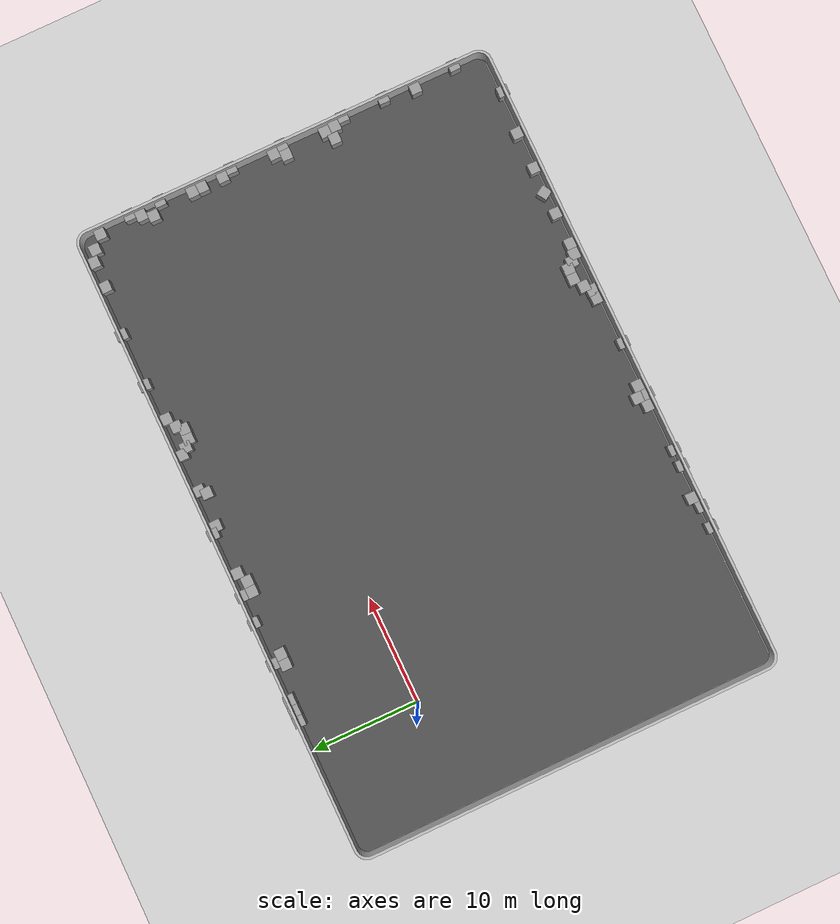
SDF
<sdf version="1.4">
 <world name="default">
  <light name="sun" type="directional">
   <pose>0 0 10 0 -0 0</pose>
   <diffuse>0.8 0.8 0.8 1</diffuse>
   <specular>0.2 0.2 0.2 1</specular>
   <attenuation>
    <range>1000</range>
    <constant>0.9</constant>
    <linear>0.01</linear>
    <quadratic>0.001</quadratic>
   </attenuation>
   <direction>-0.5 0.1 -0.9</direction>
  </light>
  <model name="border">
   <static>1</static>
   <link name="link">
    <collision name="collision">
     <geometry><mesh><uri>model://border/meshes/border.DAE</uri></mesh></geometry>
    </collision>
    <visual name="visual">
     <geometry><mesh><uri>model://border/meshes/border.DAE</uri></mesh></geometry>
     <material>
      <script>
       <uri>model://border/materials/scripts</uri>
       <uri>model://border/materials/textures</uri>
       <name>vrc/border</name>
      </script>
     </material>
    </visual>
    <velocity_decay><linear>0</linear><angular>0</angular></velocity_decay>
   </link>
   <pose>20 -10 0 0 -0 1.57079</pose>
  </model>
  <model name="ground_plane">
   <static>1</static>
   <link name="link">
    <collision name="collision">
     <geometry><plane><normal>0 0 1</normal><size>100 100</size></plane></geometry>
     <surface><friction><ode><mu>100</mu><mu2>50</mu2></ode></friction></surface>
    </collision>
    <visual name="visual">
     <cast_shadows>0</cast_shadows>
     <geometry><plane><normal>0 0 1</normal><size>1000 1000</size></plane></geometry>
     <material>
      <script><uri>file://media/materials/scripts/gazebo.material</uri><name>Gazebo/Grey</name></script>
     </material>
    </visual>
    <velocity_decay><linear>0</linear><angular>0</angular></velocity_decay>
   </link>
  </model>
  <physics type="ode">
   <max_step_size>0.002</max_step_size>
   <real_time_factor>1</real_time_factor>
   <real_time_update_rate>100</real_time_update_rate>
   <gravity>0 0 -9.8</gravity>
  </physics>
  <scene><ambient>0.4 0.4 0.4 1</ambient><background>0.7 0.7 0.7 1</background><shadows>1</shadows></scene>
  <model name="asphalt_plane">
   <static>1</static>
   <link name="link">
    <collision name="collision"><geometry><box><size>60 40 0.1</size></box></geometry></collision>
    <visual name="visual">
     <cast_shadows>0</cast_shadows>
     <geometry><box><size>60 40 0.1</size></box></geometry>
     <material>
      <script>
       <uri>model://asphalt_plane/materials/scripts</uri>
       <uri>model://asphalt_plane/materials/textures</uri>
       <name>vrc/asphalt</name>
      </script>
     </material>
    </visual>
    <velocity_decay><linear>0</linear><angular>0</angular></velocity_decay>
   </link>
   <pose>20.0271 -9.90036 0 0 -0 0</pose>
  </model>
  <spherical_coordinates>
   <surface_model>EARTH_WGS84</surface_model>
   <latitude_deg>0</latitude_deg>
   <longitude_deg>0</longitude_deg>
   <elevation>0</elevation>
   <heading_deg>0</heading_deg>
  </spherical_coordinates>
  <model name="unit_box_1">
   <pose>5 10 0.5 0 -0 0</pose>
   <link name="link">
    <inertial>
     <mass>1</mass>
     <inertia><ixx>1</ixx><ixy>0</ixy><ixz>0</ixz><iyy>1</iyy><iyz>0</iyz><izz>1</izz></inertia>
    </inertial>
    <collision name="collision"><geometry><box><size>1 1 1</size></box></geometry></collision>
    <visual name="visual">
     <geometry><box><size>1 1 1</size></box></geometry>
     <material>
      <script><uri>file://media/materials/scripts/gazebo.material</uri><name>Gazebo/Grey</name></script>
     </material>
    </visual>
    <velocity_decay><linear>0</linear><angular>0</angular></velocity_decay>
   </link>
   <static>0</static>
  </model>
  <model name="unit_box_2">
   <pose>8.44714 10 0.5 0 -0 0</pose>
   <link name="link">
    <inertial>
     <mass>1</mass>
     <inertia><ixx>1</ixx><ixy>0</ixy><ixz>0</ixz><iyy>1</iyy><iyz>0</iyz><izz>1</izz></inertia>
    </inertial>
    <collision name="collision"><geometry><box><size>1 1 1</size></box></geometry></collision>
    <visual name="visual">
     <geometry><box><size>1 1 1</size></box></geometry>
     <material>
      <script><uri>file://media/materials/scripts/gazebo.material</uri><name>Gazebo/Grey</name></script>
     </material>
    </visual>
    <velocity_decay><linear>0</linear><angular>0</angular></velocity_decay>
   </link>
   <static>0</static>
  </model>
  <model name="unit_box_3">
   <pose>15 10 0.5 0 -0 0</pose>
   <link name="link">
    <inertial>
     <mass>1</mass>
     <inertia><ixx>1</ixx><ixy>0</ixy><ixz>0</ixz><iyy>1</iyy><iyz>0</iyz><izz>1</izz></inertia>
    </inertial>
    <collision name="collision"><geometry><box><size>1 1 1</size></box></geometry></collision>
    <visual name="visual">
     <geometry><box><size>1 1 1</size></box></geometry>
     <material>
      <script><uri>file://media/materials/scripts/gazebo.material</uri><name>Gazebo/Grey</name></script>
     </material>
    </visual>
    <velocity_decay><linear>0</linear><angular>0</angular></velocity_decay>
   </link>
   <static>0</static>
  </model>
  <model name="unit_box_4">
   <pose>12.4145 10 0.5 0 -0 0</pose>
   <link name="link">
    <inertial>
     <mass>1</mass>
     <inertia><ixx>1</ixx><ixy>0</ixy><ixz>0</ixz><iyy>1</iyy><iyz>0</iyz><izz>1</izz></inertia>
    </inertial>
    <collision name="collision"><geometry><box><size>1 1 1</size></box></geometry></collision>
    <visual name="visual">
     <geometry><box><size>1 1 1</size></box></geometry>
     <material>
      <script><uri>file://media/materials/scripts/gazebo.material</uri><name>Gazebo/Grey</name></script>
     </material>
    </visual>
    <velocity_decay><linear>0</linear><angular>0</angular></velocity_decay>
   </link>
   <static>0</static>
  </model>
  <model name="unit_box_5">
   <pose>15 9 0.5 0 -0 0</pose>
   <link name="link">
    <inertial>
     <mass>1</mass>
     <inertia><ixx>1</ixx><ixy>0</ixy><ixz>0</ixz><iyy>1</iyy><iyz>0</iyz><izz>1</izz></inertia>
    </inertial>
    <collision name="collision"><geometry><box><size>1 1 1</size></box></geometry></collision>
    <visual name="visual">
     <geometry><box><size>1 1 1</size></box></geometry>
     <material>
      <script><uri>file://media/materials/scripts/gazebo.material</uri><name>Gazebo/Grey</name></script>
     </material>
    </visual>
    <velocity_decay><linear>0</linear><angular>0</angular></velocity_decay>
   </link>
   <static>0</static>
  </model>
  <model name="unit_box_6">
   <pose>21 10 0.5 0 -0 0</pose>
   <link name="link">
    <inertial>
     <mass>1</mass>
     <inertia><ixx>1</ixx><ixy>0</ixy><ixz>0</ixz><iyy>1</iyy><iyz>0</iyz><izz>1</izz></inertia>
    </inertial>
    <collision name="collision"><geometry><box><size>1 1 1</size></box></geometry></collision>
    <visual name="visual">
     <geometry><box><size>1 1 1</size></box></geometry>
     <material>
      <script><uri>file://media/materials/scripts/gazebo.material</uri><name>Gazebo/Grey</name></script>
     </material>
    </visual>
    <velocity_decay><linear>0</linear><angular>0</angular></velocity_decay>
   </link>
   <static>0</static>
  </model>
  <model name="unit_box_7">
   <pose>21.5704 9.47878 0.5 0 -0 0</pose>
   <link name="link">
    <inertial>
     <mass>1</mass>
     <inertia><ixx>1</ixx><ixy>0</ixy><ixz>0</ixz><iyy>1</iyy><iyz>0</iyz><izz>1</izz></inertia>
    </inertial>
    <collision name="collision"><geometry><box><size>1 1 1</size></box></geometry></collision>
    <visual name="visual">
     <geometry><box><size>1 1 1</size></box></geometry>
     <material>
      <script><uri>file://media/materials/scripts/gazebo.material</uri><name>Gazebo/Grey</name></script>
     </material>
    </visual>
    <velocity_decay><linear>0</linear><angular>0</angular></velocity_decay>
   </link>
   <static>0</static>
  </model>
  <model name="unit_box_8">
   <pose>16 9 0.5 0 -0 0</pose>
   <link name="link">
    <inertial>
     <mass>1</mass>
     <inertia><ixx>1</ixx><ixy>0</ixy><ixz>0</ixz><iyy>1</iyy><iyz>0</iyz><izz>1</izz></inertia>
    </inertial>
    <collision name="collision"><geometry><box><size>1 1 1</size></box></geometry></collision>
    <visual name="visual">
     <geometry><box><size>1 1 1</size></box></geometry>
     <material>
      <script><uri>file://media/materials/scripts/gazebo.material</uri><name>Gazebo/Grey</name></script>
     </material>
    </visual>
    <velocity_decay><linear>0</linear><angular>0</angular></velocity_decay>
   </link>
   <static>0</static>
  </model>
  <model name="unit_box_9">
   <pose>17 9.50852 0.5 0 -0 0</pose>
   <link name="link">
    <inertial>
     <mass>1</mass>
     <inertia><ixx>1</ixx><ixy>0</ixy><ixz>0</ixz><iyy>1</iyy><iyz>0</iyz><izz>1</izz></inertia>
    </inertial>
    <collision name="collision"><geometry><box><size>1 1 1</size></box></geometry></collision>
    <visual name="visual">
     <geometry><box><size>1 1 1</size></box></geometry>
     <material>
      <script><uri>file://media/materials/scripts/gazebo.material</uri><name>Gazebo/Grey</name></script>
     </material>
    </visual>
    <velocity_decay><linear>0</linear><angular>0</angular></velocity_decay>
   </link>
   <static>0</static>
  </model>
  <model name="unit_box_10">
   <pose>25 9.5316 0.5 0 -0 0</pose>
   <link name="link">
    <inertial>
     <mass>1</mass>
     <inertia><ixx>1</ixx><ixy>0</ixy><ixz>0</ixz><iyy>1</iyy><iyz>0</iyz><izz>1</izz></inertia>
    </inertial>
    <collision name="collision"><geometry><box><size>1 1 1</size></box></geometry></collision>
    <visual name="visual">
     <geometry><box><size>1 1 1</size></box></geometry>
     <material>
      <script><uri>file://media/materials/scripts/gazebo.material</uri><name>Gazebo/Grey</name></script>
     </material>
    </visual>
    <velocity_decay><linear>0</linear><angular>0</angular></velocity_decay>
   </link>
   <static>0</static>
  </model>
  <model name="unit_box_11">
   <pose>24.5468 9 0.5 0 -0 0</pose>
   <link name="link">
    <inertial>
     <mass>1</mass>
     <inertia><ixx>1</ixx><ixy>0</ixy><ixz>0</ixz><iyy>1</iyy><iyz>0</iyz><izz>1</izz></inertia>
    </inertial>
    <collision name="collision"><geometry><box><size>1 1 1</size></box></geometry></collision>
    <visual name="visual">
     <geometry><box><size>1 1 1</size></box></geometry>
     <material>
      <script><uri>file://media/materials/scripts/gazebo.material</uri><name>Gazebo/Grey</name></script>
     </material>
    </visual>
    <velocity_decay><linear>0</linear><angular>0</angular></velocity_decay>
   </link>
   <static>0</static>
  </model>
  <model name="unit_box_12">
   <pose>28.5155 9.57639 0.5 0 -0 0</pose>
   <link name="link">
    <inertial>
     <mass>1</mass>
     <inertia><ixx>1</ixx><ixy>0</ixy><ixz>0</ixz><iyy>1</iyy><iyz>0</iyz><izz>1</izz></inertia>
    </inertial>
    <collision name="collision"><geometry><box><size>1 1 1</size></box></geometry></collision>
    <visual name="visual">
     <geometry><box><size>1 1 1</size></box></geometry>
     <material>
      <script><uri>file://media/materials/scripts/gazebo.material</uri><name>Gazebo/Grey</name></script>
     </material>
    </visual>
    <velocity_decay><linear>0</linear><angular>0</angular></velocity_decay>
   </link>
   <static>0</static>
  </model>
  <model name="unit_box_13">
   <pose>29 9 0.5 0 -0 0</pose>
   <link name="link">
    <inertial>
     <mass>1</mass>
     <inertia><ixx>1</ixx><ixy>0</ixy><ixz>0</ixz><iyy>1</iyy><iyz>0</iyz><izz>1</izz></inertia>
    </inertial>
    <collision name="collision"><geometry><box><size>1 1 1</size></box></geometry></collision>
    <visual name="visual">
     <geometry><box><size>1 1 1</size></box></geometry>
     <material>
      <script><uri>file://media/materials/scripts/gazebo.material</uri><name>Gazebo/Grey</name></script>
     </material>
    </visual>
    <velocity_decay><linear>0</linear><angular>0</angular></velocity_decay>
   </link>
   <static>0</static>
  </model>
  <model name="unit_box_14">
   <pose>29.591 8.48161 0.5 0 -0 0</pose>
   <link name="link">
    <inertial>
     <mass>1</mass>
     <inertia><ixx>1</ixx><ixy>0</ixy><ixz>0</ixz><iyy>1</iyy><iyz>0</iyz><izz>1</izz></inertia>
    </inertial>
    <collision name="collision"><geometry><box><size>1 1 1</size></box></geometry></collision>
    <visual name="visual">
     <geometry><box><size>1 1 1</size></box></geometry>
     <material>
      <script><uri>file://media/materials/scripts/gazebo.material</uri><name>Gazebo/Grey</name></script>
     </material>
    </visual>
    <velocity_decay><linear>0</linear><angular>0</angular></velocity_decay>
   </link>
   <static>0</static>
  </model>
  <model name="unit_box_15">
   <pose>30.5347 8.46531 0.5 0 -0 0</pose>
   <link name="link">
    <inertial>
     <mass>1</mass>
     <inertia><ixx>1</ixx><ixy>0</ixy><ixz>0</ixz><iyy>1</iyy><iyz>0</iyz><izz>1</izz></inertia>
    </inertial>
    <collision name="collision"><geometry><box><size>1 1 1</size></box></geometry></collision>
    <visual name="visual">
     <geometry><box><size>1 1 1</size></box></geometry>
     <material>
      <script><uri>file://media/materials/scripts/gazebo.material</uri><name>Gazebo/Grey</name></script>
     </material>
    </visual>
    <velocity_decay><linear>0</linear><angular>0</angular></velocity_decay>
   </link>
   <static>0</static>
  </model>
  <model name="unit_box_16">
   <pose>31 9 0.5 0 -0 0</pose>
   <link name="link">
    <inertial>
     <mass>1</mass>
     <inertia><ixx>1</ixx><ixy>0</ixy><ixz>0</ixz><iyy>1</iyy><iyz>0</iyz><izz>1</izz></inertia>
    </inertial>
    <collision name="collision"><geometry><box><size>1 1 1</size></box></geometry></collision>
    <visual name="visual">
     <geometry><box><size>1 1 1</size></box></geometry>
     <material>
      <script><uri>file://media/materials/scripts/gazebo.material</uri><name>Gazebo/Grey</name></script>
     </material>
    </visual>
    <velocity_decay><linear>0</linear><angular>0</angular></velocity_decay>
   </link>
   <static>0</static>
  </model>
  <model name="unit_box_17">
   <pose>32 9.52798 0.5 0 -0 0</pose>
   <link name="link">
    <inertial>
     <mass>1</mass>
     <inertia><ixx>1</ixx><ixy>0</ixy><ixz>0</ixz><iyy>1</iyy><iyz>0</iyz><izz>1</izz></inertia>
    </inertial>
    <collision name="collision"><geometry><box><size>1 1 1</size></box></geometry></collision>
    <visual name="visual">
     <geometry><box><size>1 1 1</size></box></geometry>
     <material>
      <script><uri>file://media/materials/scripts/gazebo.material</uri><name>Gazebo/Grey</name></script>
     </material>
    </visual>
    <velocity_decay><linear>0</linear><angular>0</angular></velocity_decay>
   </link>
   <static>0</static>
  </model>
  <model name="unit_box_18">
   <pose>35.5352 10 0.5 0 -0 0</pose>
   <link name="link">
    <inertial>
     <mass>1</mass>
     <inertia><ixx>1</ixx><ixy>0</ixy><ixz>0</ixz><iyy>1</iyy><iyz>0</iyz><izz>1</izz></inertia>
    </inertial>
    <collision name="collision"><geometry><box><size>1 1 1</size></box></geometry></collision>
    <visual name="visual">
     <geometry><box><size>1 1 1</size></box></geometry>
     <material>
      <script><uri>file://media/materials/scripts/gazebo.material</uri><name>Gazebo/Grey</name></script>
     </material>
    </visual>
    <velocity_decay><linear>0</linear><angular>0</angular></velocity_decay>
   </link>
   <static>0</static>
  </model>
  <model name="unit_box_19">
   <pose>40.4865 10 0.5 0 -0 0</pose>
   <link name="link">
    <inertial>
     <mass>1</mass>
     <inertia><ixx>1</ixx><ixy>0</ixy><ixz>0</ixz><iyy>1</iyy><iyz>0</iyz><izz>1</izz></inertia>
    </inertial>
    <collision name="collision"><geometry><box><size>1 1 1</size></box></geometry></collision>
    <visual name="visual">
     <geometry><box><size>1 1 1</size></box></geometry>
     <material>
      <script><uri>file://media/materials/scripts/gazebo.material</uri><name>Gazebo/Grey</name></script>
     </material>
    </visual>
    <velocity_decay><linear>0</linear><angular>0</angular></velocity_decay>
   </link>
   <static>0</static>
  </model>
  <model name="unit_box_20">
   <pose>50 5 0.5 0 -0 0</pose>
   <link name="link">
    <inertial>
     <mass>1</mass>
     <inertia><ixx>1</ixx><ixy>0</ixy><ixz>0</ixz><iyy>1</iyy><iyz>0</iyz><izz>1</izz></inertia>
    </inertial>
    <collision name="collision"><geometry><box><size>1 1 1</size></box></geometry></collision>
    <visual name="visual">
     <geometry><box><size>1 1 1</size></box></geometry>
     <material>
      <script><uri>file://media/materials/scripts/gazebo.material</uri><name>Gazebo/Grey</name></script>
     </material>
    </visual>
    <velocity_decay><linear>0</linear><angular>0</angular></velocity_decay>
   </link>
   <static>0</static>
  </model>
  <model name="unit_box_21">
   <pose>16 -30 0.5 0 -0 0</pose>
   <link name="link">
    <inertial>
     <mass>1</mass>
     <inertia><ixx>1</ixx><ixy>0</ixy><ixz>0</ixz><iyy>1</iyy><iyz>0</iyz><izz>1</izz></inertia>
    </inertial>
    <collision name="collision"><geometry><box><size>1 1 1</size></box></geometry></collision>
    <visual name="visual">
     <geometry><box><size>1 1 1</size></box></geometry>
     <material>
      <script><uri>file://media/materials/scripts/gazebo.material</uri><name>Gazebo/Grey</name></script>
     </material>
    </visual>
    <velocity_decay><linear>0</linear><angular>0</angular></velocity_decay>
   </link>
   <static>0</static>
  </model>
  <model name="unit_box_22">
   <pose>8 9 0.5 0 -0 0</pose>
   <link name="link">
    <inertial>
     <mass>1</mass>
     <inertia><ixx>1</ixx><ixy>0</ixy><ixz>0</ixz><iyy>1</iyy><iyz>0</iyz><izz>1</izz></inertia>
    </inertial>
    <collision name="collision"><geometry><box><size>1 1 1</size></box></geometry></collision>
    <visual name="visual">
     <geometry><box><size>1 1 1</size></box></geometry>
     <material>
      <script><uri>file://media/materials/scripts/gazebo.material</uri><name>Gazebo/Grey</name></script>
     </material>
    </visual>
    <velocity_decay><linear>0</linear><angular>0</angular></velocity_decay>
   </link>
   <static>0</static>
  </model>
  <model name="unit_box_23">
   <pose>9 9 0.5 0 -0 0</pose>
   <link name="link">
    <inertial>
     <mass>1</mass>
     <inertia><ixx>1</ixx><ixy>0</ixy><ixz>0</ixz><iyy>1</iyy><iyz>0</iyz><izz>1</izz></inertia>
    </inertial>
    <collision name="collision"><geometry><box><size>1 1 1</size></box></geometry></collision>
    <visual name="visual">
     <geometry><box><size>1 1 1</size></box></geometry>
     <material>
      <script><uri>file://media/materials/scripts/gazebo.material</uri><name>Gazebo/Grey</name></script>
     </material>
    </visual>
    <velocity_decay><linear>0</linear><angular>0</angular></velocity_decay>
   </link>
   <static>0</static>
  </model>
  <model name="unit_box_24">
   <pose>3 10 0.5 0 -0 0</pose>
   <link name="link">
    <inertial>
     <mass>1</mass>
     <inertia><ixx>1</ixx><ixy>0</ixy><ixz>0</ixz><iyy>1</iyy><iyz>0</iyz><izz>1</izz></inertia>
    </inertial>
    <collision name="collision"><geometry><box><size>1 1 1</size></box></geometry></collision>
    <visual name="visual">
     <geometry><box><size>1 1 1</size></box></geometry>
     <material>
      <script><uri>file://media/materials/scripts/gazebo.material</uri><name>Gazebo/Grey</name></script>
     </material>
    </visual>
    <velocity_decay><linear>0</linear><angular>0</angular></velocity_decay>
   </link>
   <static>0</static>
  </model>
  <model name="unit_box_25">
   <pose>4 10 0.5 0 -0 0</pose>
   <link name="link">
    <inertial>
     <mass>1</mass>
     <inertia><ixx>1</ixx><ixy>0</ixy><ixz>0</ixz><iyy>1</iyy><iyz>0</iyz><izz>1</izz></inertia>
    </inertial>
    <collision name="collision"><geometry><box><size>1 1 1</size></box></geometry></collision>
    <visual name="visual">
     <geometry><box><size>1 1 1</size></box></geometry>
     <material>
      <script><uri>file://media/materials/scripts/gazebo.material</uri><name>Gazebo/Grey</name></script>
     </material>
    </visual>
    <velocity_decay><linear>0</linear><angular>0</angular></velocity_decay>
   </link>
   <static>0</static>
  </model>
  <model name="unit_box_26">
   <pose>16 -29 0.5 0 -0 0</pose>
   <link name="link">
    <inertial>
     <mass>1</mass>
     <inertia><ixx>1</ixx><ixy>0</ixy><ixz>0</ixz><iyy>1</iyy><iyz>0</iyz><izz>1</izz></inertia>
    </inertial>
    <collision name="collision"><geometry><box><size>1 1 1</size></box></geometry></collision>
    <visual name="visual">
     <geometry><box><size>1 1 1</size></box></geometry>
     <material>
      <script><uri>file://media/materials/scripts/gazebo.material</uri><name>Gazebo/Grey</name></script>
     </material>
    </visual>
    <velocity_decay><linear>0</linear><angular>0</angular></velocity_decay>
   </link>
   <static>0</static>
  </model>
  <model name="unit_box_27">
   <pose>10.5403 -30 0.5 0 -0 0</pose>
   <link name="link">
    <inertial>
     <mass>1</mass>
     <inertia><ixx>1</ixx><ixy>0</ixy><ixz>0</ixz><iyy>1</iyy><iyz>0</iyz><izz>1</izz></inertia>
    </inertial>
    <collision name="collision"><geometry><box><size>1 1 1</size></box></geometry></collision>
    <visual name="visual">
     <geometry><box><size>1 1 1</size></box></geometry>
     <material>
      <script><uri>file://media/materials/scripts/gazebo.material</uri><name>Gazebo/Grey</name></script>
     </material>
    </visual>
    <velocity_decay><linear>0</linear><angular>0</angular></velocity_decay>
   </link>
   <static>0</static>
  </model>
  <model name="unit_box_28">
   <pose>21 -30 0.5 0 -0 0</pose>
   <link name="link">
    <inertial>
     <mass>1</mass>
     <inertia><ixx>1</ixx><ixy>0</ixy><ixz>0</ixz><iyy>1</iyy><iyz>0</iyz><izz>1</izz></inertia>
    </inertial>
    <collision name="collision"><geometry><box><size>1 1 1</size></box></geometry></collision>
    <visual name="visual">
     <geometry><box><size>1 1 1</size></box></geometry>
     <material>
      <script><uri>file://media/materials/scripts/gazebo.material</uri><name>Gazebo/Grey</name></script>
     </material>
    </visual>
    <velocity_decay><linear>0</linear><angular>0</angular></velocity_decay>
   </link>
   <static>0</static>
  </model>
  <model name="unit_box_29">
   <pose>26.4146 -29.5134 0.5 0 -0 0</pose>
   <link name="link">
    <inertial>
     <mass>1</mass>
     <inertia><ixx>1</ixx><ixy>0</ixy><ixz>0</ixz><iyy>1</iyy><iyz>0</iyz><izz>1</izz></inertia>
    </inertial>
    <collision name="collision"><geometry><box><size>1 1 1</size></box></geometry></collision>
    <visual name="visual">
     <geometry><box><size>1 1 1</size></box></geometry>
     <material>
      <script><uri>file://media/materials/scripts/gazebo.material</uri><name>Gazebo/Grey</name></script>
     </material>
    </visual>
    <velocity_decay><linear>0</linear><angular>0</angular></velocity_decay>
   </link>
   <static>0</static>
  </model>
  <model name="unit_box_30">
   <pose>31 -29.5575 0.5 0 -0 0</pose>
   <link name="link">
    <inertial>
     <mass>1</mass>
     <inertia><ixx>1</ixx><ixy>0</ixy><ixz>0</ixz><iyy>1</iyy><iyz>0</iyz><izz>1</izz></inertia>
    </inertial>
    <collision name="collision"><geometry><box><size>1 1 1</size></box></geometry></collision>
    <visual name="visual">
     <geometry><box><size>1 1 1</size></box></geometry>
     <material>
      <script><uri>file://media/materials/scripts/gazebo.material</uri><name>Gazebo/Grey</name></script>
     </material>
    </visual>
    <velocity_decay><linear>0</linear><angular>0</angular></velocity_decay>
   </link>
   <static>0</static>
  </model>
  <model name="unit_box_31">
   <pose>15 -29.5858 0.5 0 -0 0</pose>
   <link name="link">
    <inertial>
     <mass>1</mass>
     <inertia><ixx>1</ixx><ixy>0</ixy><ixz>0</ixz><iyy>1</iyy><iyz>0</iyz><izz>1</izz></inertia>
    </inertial>
    <collision name="collision"><geometry><box><size>1 1 1</size></box></geometry></collision>
    <visual name="visual">
     <geometry><box><size>1 1 1</size></box></geometry>
     <material>
      <script><uri>file://media/materials/scripts/gazebo.material</uri><name>Gazebo/Grey</name></script>
     </material>
    </visual>
    <velocity_decay><linear>0</linear><angular>0</angular></velocity_decay>
   </link>
   <static>0</static>
  </model>
  <model name="unit_box_32">
   <pose>9 -30 0.5 0 -0 0</pose>
   <link name="link">
    <inertial>
     <mass>1</mass>
     <inertia><ixx>1</ixx><ixy>0</ixy><ixz>0</ixz><iyy>1</iyy><iyz>0</iyz><izz>1</izz></inertia>
    </inertial>
    <collision name="collision"><geometry><box><size>1 1 1</size></box></geometry></collision>
    <visual name="visual">
     <geometry><box><size>1 1 1</size></box></geometry>
     <material>
      <script><uri>file://media/materials/scripts/gazebo.material</uri><name>Gazebo/Grey</name></script>
     </material>
    </visual>
    <velocity_decay><linear>0</linear><angular>0</angular></velocity_decay>
   </link>
   <static>0</static>
  </model>
  <model name="unit_box_33">
   <pose>6 -29.5138 0.5 0 -0 0</pose>
   <link name="link">
    <inertial>
     <mass>1</mass>
     <inertia><ixx>1</ixx><ixy>0</ixy><ixz>0</ixz><iyy>1</iyy><iyz>0</iyz><izz>1</izz></inertia>
    </inertial>
    <collision name="collision"><geometry><box><size>1 1 1</size></box></geometry></collision>
    <visual name="visual">
     <geometry><box><size>1 1 1</size></box></geometry>
     <material>
      <script><uri>file://media/materials/scripts/gazebo.material</uri><name>Gazebo/Grey</name></script>
     </material>
    </visual>
    <velocity_decay><linear>0</linear><angular>0</angular></velocity_decay>
   </link>
   <static>0</static>
  </model>
  <model name="unit_box_34">
   <pose>3 -30 0.5 0 -0 0</pose>
   <link name="link">
    <inertial>
     <mass>1</mass>
     <inertia><ixx>1</ixx><ixy>0</ixy><ixz>0</ixz><iyy>1</iyy><iyz>0</iyz><izz>1</izz></inertia>
    </inertial>
    <collision name="collision"><geometry><box><size>1 1 1</size></box></geometry></collision>
    <visual name="visual">
     <geometry><box><size>1 1 1</size></box></geometry>
     <material>
      <script><uri>file://media/materials/scripts/gazebo.material</uri><name>Gazebo/Grey</name></script>
     </material>
    </visual>
    <velocity_decay><linear>0</linear><angular>0</angular></velocity_decay>
   </link>
   <static>0</static>
  </model>
  <model name="unit_box_35">
   <pose>5 -30 0.5 0 -0 0</pose>
   <link name="link">
    <inertial>
     <mass>1</mass>
     <inertia><ixx>1</ixx><ixy>0</ixy><ixz>0</ixz><iyy>1</iyy><iyz>0</iyz><izz>1</izz></inertia>
    </inertial>
    <collision name="collision"><geometry><box><size>1 1 1</size></box></geometry></collision>
    <visual name="visual">
     <geometry><box><size>1 1 1</size></box></geometry>
     <material>
      <script><uri>file://media/materials/scripts/gazebo.material</uri><name>Gazebo/Grey</name></script>
     </material>
    </visual>
    <velocity_decay><linear>0</linear><angular>0</angular></velocity_decay>
   </link>
   <static>0</static>
  </model>
  <model name="unit_box_36">
   <pose>17 -29.4967 0.5 0 -0 0</pose>
   <link name="link">
    <inertial>
     <mass>1</mass>
     <inertia><ixx>1</ixx><ixy>0</ixy><ixz>0</ixz><iyy>1</iyy><iyz>0</iyz><izz>1</izz></inertia>
    </inertial>
    <collision name="collision"><geometry><box><size>1 1 1</size></box></geometry></collision>
    <visual name="visual">
     <geometry><box><size>1 1 1</size></box></geometry>
     <material>
      <script><uri>file://media/materials/scripts/gazebo.material</uri><name>Gazebo/Grey</name></script>
     </material>
    </visual>
    <velocity_decay><linear>0</linear><angular>0</angular></velocity_decay>
   </link>
   <static>0</static>
  </model>
  <model name="unit_box_37">
   <pose>25.5726 -29.5525 0.5 0 -0 0</pose>
   <link name="link">
    <inertial>
     <mass>1</mass>
     <inertia><ixx>1</ixx><ixy>0</ixy><ixz>0</ixz><iyy>1</iyy><iyz>0</iyz><izz>1</izz></inertia>
    </inertial>
    <collision name="collision"><geometry><box><size>1 1 1</size></box></geometry></collision>
    <visual name="visual">
     <geometry><box><size>1 1 1</size></box></geometry>
     <material>
      <script><uri>file://media/materials/scripts/gazebo.material</uri><name>Gazebo/Grey</name></script>
     </material>
    </visual>
    <velocity_decay><linear>0</linear><angular>0</angular></velocity_decay>
   </link>
   <static>0</static>
  </model>
  <model name="unit_box_38">
   <pose>30 -29.4451 0.5 0 -0 0</pose>
   <link name="link">
    <inertial>
     <mass>1</mass>
     <inertia><ixx>1</ixx><ixy>0</ixy><ixz>0</ixz><iyy>1</iyy><iyz>0</iyz><izz>1</izz></inertia>
    </inertial>
    <collision name="collision"><geometry><box><size>1 1 1</size></box></geometry></collision>
    <visual name="visual">
     <geometry><box><size>1 1 1</size></box></geometry>
     <material>
      <script><uri>file://media/materials/scripts/gazebo.material</uri><name>Gazebo/Grey</name></script>
     </material>
    </visual>
    <velocity_decay><linear>0</linear><angular>0</angular></velocity_decay>
   </link>
   <static>0</static>
  </model>
  <model name="unit_box_39">
   <pose>27 -29 0.5 0 -0 0</pose>
   <link name="link">
    <inertial>
     <mass>1</mass>
     <inertia><ixx>1</ixx><ixy>0</ixy><ixz>0</ixz><iyy>1</iyy><iyz>0</iyz><izz>1</izz></inertia>
    </inertial>
    <collision name="collision"><geometry><box><size>1 1 1</size></box></geometry></collision>
    <visual name="visual">
     <geometry><box><size>1 1 1</size></box></geometry>
     <material>
      <script><uri>file://media/materials/scripts/gazebo.material</uri><name>Gazebo/Grey</name></script>
     </material>
    </visual>
    <velocity_decay><linear>0</linear><angular>0</angular></velocity_decay>
   </link>
   <static>0</static>
  </model>
  <model name="unit_box_40">
   <pose>28 -28.4229 0.5 0 -0 0</pose>
   <link name="link">
    <inertial>
     <mass>1</mass>
     <inertia><ixx>1</ixx><ixy>0</ixy><ixz>0</ixz><iyy>1</iyy><iyz>0</iyz><izz>1</izz></inertia>
    </inertial>
    <collision name="collision"><geometry><box><size>1 1 1</size></box></geometry></collision>
    <visual name="visual">
     <geometry><box><size>1 1 1</size></box></geometry>
     <material>
      <script><uri>file://media/materials/scripts/gazebo.material</uri><name>Gazebo/Grey</name></script>
     </material>
    </visual>
    <velocity_decay><linear>0</linear><angular>0</angular></velocity_decay>
   </link>
   <static>0</static>
  </model>
  <model name="unit_box_41">
   <pose>29 -28.434 0.5 0 -0 0</pose>
   <link name="link">
    <inertial>
     <mass>1</mass>
     <inertia><ixx>1</ixx><ixy>0</ixy><ixz>0</ixz><iyy>1</iyy><iyz>0</iyz><izz>1</izz></inertia>
    </inertial>
    <collision name="collision"><geometry><box><size>1 1 1</size></box></geometry></collision>
    <visual name="visual">
     <geometry><box><size>1 1 1</size></box></geometry>
     <material>
      <script><uri>file://media/materials/scripts/gazebo.material</uri><name>Gazebo/Grey</name></script>
     </material>
    </visual>
    <velocity_decay><linear>0</linear><angular>0</angular></velocity_decay>
   </link>
   <static>0</static>
  </model>
  <model name="unit_box_42">
   <pose>29.4555 -29 0.5 0 -0 0</pose>
   <link name="link">
    <inertial>
     <mass>1</mass>
     <inertia><ixx>1</ixx><ixy>0</ixy><ixz>0</ixz><iyy>1</iyy><iyz>0</iyz><izz>1</izz></inertia>
    </inertial>
    <collision name="collision"><geometry><box><size>1 1 1</size></box></geometry></collision>
    <visual name="visual">
     <geometry><box><size>1 1 1</size></box></geometry>
     <material>
      <script><uri>file://media/materials/scripts/gazebo.material</uri><name>Gazebo/Grey</name></script>
     </material>
    </visual>
    <velocity_decay><linear>0</linear><angular>0</angular></velocity_decay>
   </link>
   <static>0</static>
  </model>
  <model name="unit_box_43">
   <pose>34 -29.5392 0.5 0 -0 0</pose>
   <link name="link">
    <inertial>
     <mass>1</mass>
     <inertia><ixx>1</ixx><ixy>0</ixy><ixz>0</ixz><iyy>1</iyy><iyz>0</iyz><izz>1</izz></inertia>
    </inertial>
    <collision name="collision"><geometry><box><size>1 1 1</size></box></geometry></collision>
    <visual name="visual">
     <geometry><box><size>1 1 1</size></box></geometry>
     <material>
      <script><uri>file://media/materials/scripts/gazebo.material</uri><name>Gazebo/Grey</name></script>
     </material>
    </visual>
    <velocity_decay><linear>0</linear><angular>0</angular></velocity_decay>
   </link>
   <static>0</static>
  </model>
  <model name="unit_box_44">
   <pose>36.1025 -29.4283 0.5 0 -0 0.555859</pose>
   <link name="link">
    <inertial>
     <mass>1</mass>
     <inertia><ixx>1</ixx><ixy>0</ixy><ixz>0</ixz><iyy>1</iyy><iyz>0</iyz><izz>1</izz></inertia>
    </inertial>
    <collision name="collision"><geometry><box><size>1 1 1</size></box></geometry></collision>
    <visual name="visual">
     <geometry><box><size>1 1 1</size></box></geometry>
     <material>
      <script><uri>file://media/materials/scripts/gazebo.material</uri><name>Gazebo/Grey</name></script>
     </material>
    </visual>
    <velocity_decay><linear>0</linear><angular>0</angular></velocity_decay>
   </link>
   <static>0</static>
  </model>
  <model name="unit_box_45">
   <pose>49.5257 8 0.5 0 -0 0</pose>
   <link name="link">
    <inertial>
     <mass>1</mass>
     <inertia><ixx>1</ixx><ixy>0</ixy><ixz>0</ixz><iyy>1</iyy><iyz>0</iyz><izz>1</izz></inertia>
    </inertial>
    <collision name="collision"><geometry><box><size>1 1 1</size></box></geometry></collision>
    <visual name="visual">
     <geometry><box><size>1 1 1</size></box></geometry>
     <material>
      <script><uri>file://media/materials/scripts/gazebo.material</uri><name>Gazebo/Grey</name></script>
     </material>
    </visual>
    <velocity_decay><linear>0</linear><angular>0</angular></velocity_decay>
   </link>
   <static>0</static>
  </model>
  <model name="unit_box_46">
   <pose>45 9.54628 0.5 0 -0 0</pose>
   <link name="link">
    <inertial>
     <mass>1</mass>
     <inertia><ixx>1</ixx><ixy>0</ixy><ixz>0</ixz><iyy>1</iyy><iyz>0</iyz><izz>1</izz></inertia>
    </inertial>
    <collision name="collision"><geometry><box><size>1 1 1</size></box></geometry></collision>
    <visual name="visual">
     <geometry><box><size>1 1 1</size></box></geometry>
     <material>
      <script><uri>file://media/materials/scripts/gazebo.material</uri><name>Gazebo/Grey</name></script>
     </material>
    </visual>
    <velocity_decay><linear>0</linear><angular>0</angular></velocity_decay>
   </link>
   <static>0</static>
  </model>
  <model name="unit_box_47">
   <pose>47.4091 9.55149 0.5 0 -0 0</pose>
   <link name="link">
    <inertial>
     <mass>1</mass>
     <inertia><ixx>1</ixx><ixy>0</ixy><ixz>0</ixz><iyy>1</iyy><iyz>0</iyz><izz>1</izz></inertia>
    </inertial>
    <collision name="collision"><geometry><box><size>1 1 1</size></box></geometry></collision>
    <visual name="visual">
     <geometry><box><size>1 1 1</size></box></geometry>
     <material>
      <script><uri>file://media/materials/scripts/gazebo.material</uri><name>Gazebo/Grey</name></script>
     </material>
    </visual>
    <velocity_decay><linear>0</linear><angular>0</angular></velocity_decay>
   </link>
   <static>0</static>
  </model>
  <model name="unit_box_48">
   <pose>38.5201 -29.5409 0.5 0 -0 0</pose>
   <link name="link">
    <inertial>
     <mass>1</mass>
     <inertia><ixx>1</ixx><ixy>0</ixy><ixz>0</ixz><iyy>1</iyy><iyz>0</iyz><izz>1</izz></inertia>
    </inertial>
    <collision name="collision"><geometry><box><size>1 1 1</size></box></geometry></collision>
    <visual name="visual">
     <geometry><box><size>1 1 1</size></box></geometry>
     <material>
      <script><uri>file://media/materials/scripts/gazebo.material</uri><name>Gazebo/Grey</name></script>
     </material>
    </visual>
    <velocity_decay><linear>0</linear><angular>0</angular></velocity_decay>
   </link>
   <static>0</static>
  </model>
  <model name="unit_box_49">
   <pose>42 -29.5199 0.5 0 -0 0</pose>
   <link name="link">
    <inertial>
     <mass>1</mass>
     <inertia><ixx>1</ixx><ixy>0</ixy><ixz>0</ixz><iyy>1</iyy><iyz>0</iyz><izz>1</izz></inertia>
    </inertial>
    <collision name="collision"><geometry><box><size>1 1 1</size></box></geometry></collision>
    <visual name="visual">
     <geometry><box><size>1 1 1</size></box></geometry>
     <material>
      <script><uri>file://media/materials/scripts/gazebo.material</uri><name>Gazebo/Grey</name></script>
     </material>
    </visual>
    <velocity_decay><linear>0</linear><angular>0</angular></velocity_decay>
   </link>
   <static>0</static>
  </model>
  <model name="unit_box_50">
   <pose>46 -30 0.5 0 -0 0</pose>
   <link name="link">
    <inertial>
     <mass>1</mass>
     <inertia><ixx>1</ixx><ixy>0</ixy><ixz>0</ixz><iyy>1</iyy><iyz>0</iyz><izz>1</izz></inertia>
    </inertial>
    <collision name="collision"><geometry><box><size>1 1 1</size></box></geometry></collision>
    <visual name="visual">
     <geometry><box><size>1 1 1</size></box></geometry>
     <material>
      <script><uri>file://media/materials/scripts/gazebo.material</uri><name>Gazebo/Grey</name></script>
     </material>
    </visual>
    <velocity_decay><linear>0</linear><angular>0</angular></velocity_decay>
   </link>
   <static>0</static>
  </model>
  <model name="unit_box_51">
   <pose>50 -27 0.5 0 -0 0</pose>
   <link name="link">
    <inertial>
     <mass>1</mass>
     <inertia><ixx>1</ixx><ixy>0</ixy><ixz>0</ixz><iyy>1</iyy><iyz>0</iyz><izz>1</izz></inertia>
    </inertial>
    <collision name="collision"><geometry><box><size>1 1 1</size></box></geometry></collision>
    <visual name="visual">
     <geometry><box><size>1 1 1</size></box></geometry>
     <material>
      <script><uri>file://media/materials/scripts/gazebo.material</uri><name>Gazebo/Grey</name></script>
     </material>
    </visual>
    <velocity_decay><linear>0</linear><angular>0</angular></velocity_decay>
   </link>
   <static>0</static>
  </model>
  <model name="unit_box_52">
   <pose>49.5687 -23 0.5 0 -0 0</pose>
   <link name="link">
    <inertial>
     <mass>1</mass>
     <inertia><ixx>1</ixx><ixy>0</ixy><ixz>0</ixz><iyy>1</iyy><iyz>0</iyz><izz>1</izz></inertia>
    </inertial>
    <collision name="collision"><geometry><box><size>1 1 1</size></box></geometry></collision>
    <visual name="visual">
     <geometry><box><size>1 1 1</size></box></geometry>
     <material>
      <script><uri>file://media/materials/scripts/gazebo.material</uri><name>Gazebo/Grey</name></script>
     </material>
    </visual>
    <velocity_decay><linear>0</linear><angular>0</angular></velocity_decay>
   </link>
   <static>0</static>
  </model>
  <model name="unit_box_53">
   <pose>50 -16 0.5 0 -0 0</pose>
   <link name="link">
    <inertial>
     <mass>1</mass>
     <inertia><ixx>1</ixx><ixy>0</ixy><ixz>0</ixz><iyy>1</iyy><iyz>0</iyz><izz>1</izz></inertia>
    </inertial>
    <collision name="collision"><geometry><box><size>1 1 1</size></box></geometry></collision>
    <visual name="visual">
     <geometry><box><size>1 1 1</size></box></geometry>
     <material>
      <script><uri>file://media/materials/scripts/gazebo.material</uri><name>Gazebo/Grey</name></script>
     </material>
    </visual>
    <velocity_decay><linear>0</linear><angular>0</angular></velocity_decay>
   </link>
   <static>0</static>
  </model>
  <model name="unit_box_54">
   <pose>50 -20 0.5 0 -0 0</pose>
   <link name="link">
    <inertial>
     <mass>1</mass>
     <inertia><ixx>1</ixx><ixy>0</ixy><ixz>0</ixz><iyy>1</iyy><iyz>0</iyz><izz>1</izz></inertia>
    </inertial>
    <collision name="collision"><geometry><box><size>1 1 1</size></box></geometry></collision>
    <visual name="visual">
     <geometry><box><size>1 1 1</size></box></geometry>
     <material>
      <script><uri>file://media/materials/scripts/gazebo.material</uri><name>Gazebo/Grey</name></script>
     </material>
    </visual>
    <velocity_decay><linear>0</linear><angular>0</angular></velocity_decay>
   </link>
   <static>0</static>
  </model>
  <model name="unit_box_55">
   <pose>50 -5 0.5 0 -0 0</pose>
   <link name="link">
    <inertial>
     <mass>1</mass>
     <inertia><ixx>1</ixx><ixy>0</ixy><ixz>0</ixz><iyy>1</iyy><iyz>0</iyz><izz>1</izz></inertia>
    </inertial>
    <collision name="collision"><geometry><box><size>1 1 1</size></box></geometry></collision>
    <visual name="visual">
     <geometry><box><size>1 1 1</size></box></geometry>
     <material>
      <script><uri>file://media/materials/scripts/gazebo.material</uri><name>Gazebo/Grey</name></script>
     </material>
    </visual>
    <velocity_decay><linear>0</linear><angular>0</angular></velocity_decay>
   </link>
   <static>0</static>
  </model>
  <model name="unit_box_56">
   <pose>49.5053 -1 0.5 0 -0 0</pose>
   <link name="link">
    <inertial>
     <mass>1</mass>
     <inertia><ixx>1</ixx><ixy>0</ixy><ixz>0</ixz><iyy>1</iyy><iyz>0</iyz><izz>1</izz></inertia>
    </inertial>
    <collision name="collision"><geometry><box><size>1 1 1</size></box></geometry></collision>
    <visual name="visual">
     <geometry><box><size>1 1 1</size></box></geometry>
     <material>
      <script><uri>file://media/materials/scripts/gazebo.material</uri><name>Gazebo/Grey</name></script>
     </material>
    </visual>
    <velocity_decay><linear>0</linear><angular>0</angular></velocity_decay>
   </link>
   <static>0</static>
  </model>
  <model name="unit_box_57">
   <pose>50 2 0.5 0 -0 0</pose>
   <link name="link">
    <inertial>
     <mass>1</mass>
     <inertia><ixx>1</ixx><ixy>0</ixy><ixz>0</ixz><iyy>1</iyy><iyz>0</iyz><izz>1</izz></inertia>
    </inertial>
    <collision name="collision"><geometry><box><size>1 1 1</size></box></geometry></collision>
    <visual name="visual">
     <geometry><box><size>1 1 1</size></box></geometry>
     <material>
      <script><uri>file://media/materials/scripts/gazebo.material</uri><name>Gazebo/Grey</name></script>
     </material>
    </visual>
    <velocity_decay><linear>0</linear><angular>0</angular></velocity_decay>
   </link>
   <static>0</static>
  </model>
  <model name="unit_box_58">
   <pose>49.4906 4 0.5 0 -0 0</pose>
   <link name="link">
    <inertial>
     <mass>1</mass>
     <inertia><ixx>1</ixx><ixy>0</ixy><ixz>0</ixz><iyy>1</iyy><iyz>0</iyz><izz>1</izz></inertia>
    </inertial>
    <collision name="collision"><geometry><box><size>1 1 1</size></box></geometry></collision>
    <visual name="visual">
     <geometry><box><size>1 1 1</size></box></geometry>
     <material>
      <script><uri>file://media/materials/scripts/gazebo.material</uri><name>Gazebo/Grey</name></script>
     </material>
    </visual>
    <velocity_decay><linear>0</linear><angular>0</angular></velocity_decay>
   </link>
   <static>0</static>
  </model>
  <model name="unit_box_59">
   <pose>49 3 0.5 0 -0 0</pose>
   <link name="link">
    <inertial>
     <mass>1</mass>
     <inertia><ixx>1</ixx><ixy>0</ixy><ixz>0</ixz><iyy>1</iyy><iyz>0</iyz><izz>1</izz></inertia>
    </inertial>
    <collision name="collision"><geometry><box><size>1 1 1</size></box></geometry></collision>
    <visual name="visual">
     <geometry><box><size>1 1 1</size></box></geometry>
     <material>
      <script><uri>file://media/materials/scripts/gazebo.material</uri><name>Gazebo/Grey</name></script>
     </material>
    </visual>
    <velocity_decay><linear>0</linear><angular>0</angular></velocity_decay>
   </link>
   <static>0</static>
  </model>
  <model name="unit_box_60">
   <pose>48.4385 9 0.5 0 -0 0</pose>
   <link name="link">
    <inertial>
     <mass>1</mass>
     <inertia><ixx>1</ixx><ixy>0</ixy><ixz>0</ixz><iyy>1</iyy><iyz>0</iyz><izz>1</izz></inertia>
    </inertial>
    <collision name="collision"><geometry><box><size>1 1 1</size></box></geometry></collision>
    <visual name="visual">
     <geometry><box><size>1 1 1</size></box></geometry>
     <material>
      <script><uri>file://media/materials/scripts/gazebo.material</uri><name>Gazebo/Grey</name></script>
     </material>
    </visual>
    <velocity_decay><linear>0</linear><angular>0</angular></velocity_decay>
   </link>
   <static>0</static>
  </model>
  <model name="unit_box_61">
   <pose>49.5393 -2 0.5 0 -0 0</pose>
   <link name="link">
    <inertial>
     <mass>1</mass>
     <inertia><ixx>1</ixx><ixy>0</ixy><ixz>0</ixz><iyy>1</iyy><iyz>0</iyz><izz>1</izz></inertia>
    </inertial>
    <collision name="collision"><geometry><box><size>1 1 1</size></box></geometry></collision>
    <visual name="visual">
     <geometry><box><size>1 1 1</size></box></geometry>
     <material>
      <script><uri>file://media/materials/scripts/gazebo.material</uri><name>Gazebo/Grey</name></script>
     </material>
    </visual>
    <velocity_decay><linear>0</linear><angular>0</angular></velocity_decay>
   </link>
   <static>0</static>
  </model>
  <model name="unit_box_62">
   <pose>49.5934 -4 0.5 0 -0 0</pose>
   <link name="link">
    <inertial>
     <mass>1</mass>
     <inertia><ixx>1</ixx><ixy>0</ixy><ixz>0</ixz><iyy>1</iyy><iyz>0</iyz><izz>1</izz></inertia>
    </inertial>
    <collision name="collision"><geometry><box><size>1 1 1</size></box></geometry></collision>
    <visual name="visual">
     <geometry><box><size>1 1 1</size></box></geometry>
     <material>
      <script><uri>file://media/materials/scripts/gazebo.material</uri><name>Gazebo/Grey</name></script>
     </material>
    </visual>
    <velocity_decay><linear>0</linear><angular>0</angular></velocity_decay>
   </link>
   <static>0</static>
  </model>
  <model name="unit_box_63">
   <pose>49.5178 -15 0.5 0 -0 0</pose>
   <link name="link">
    <inertial>
     <mass>1</mass>
     <inertia><ixx>1</ixx><ixy>0</ixy><ixz>0</ixz><iyy>1</iyy><iyz>0</iyz><izz>1</izz></inertia>
    </inertial>
    <collision name="collision"><geometry><box><size>1 1 1</size></box></geometry></collision>
    <visual name="visual">
     <geometry><box><size>1 1 1</size></box></geometry>
     <material>
      <script><uri>file://media/materials/scripts/gazebo.material</uri><name>Gazebo/Grey</name></script>
     </material>
    </visual>
    <velocity_decay><linear>0</linear><angular>0</angular></velocity_decay>
   </link>
   <static>0</static>
  </model>
  <model name="unit_box_64">
   <pose>49.4037 -14 0.5 0 -0 0</pose>
   <link name="link">
    <inertial>
     <mass>1</mass>
     <inertia><ixx>1</ixx><ixy>0</ixy><ixz>0</ixz><iyy>1</iyy><iyz>0</iyz><izz>1</izz></inertia>
    </inertial>
    <collision name="collision"><geometry><box><size>1 1 1</size></box></geometry></collision>
    <visual name="visual">
     <geometry><box><size>1 1 1</size></box></geometry>
     <material>
      <script><uri>file://media/materials/scripts/gazebo.material</uri><name>Gazebo/Grey</name></script>
     </material>
    </visual>
    <velocity_decay><linear>0</linear><angular>0</angular></velocity_decay>
   </link>
   <static>0</static>
  </model>
  <model name="unit_box_65">
   <pose>48.4888 -14.5431 0.5 0 -0 0</pose>
   <link name="link">
    <inertial>
     <mass>1</mass>
     <inertia><ixx>1</ixx><ixy>0</ixy><ixz>0</ixz><iyy>1</iyy><iyz>0</iyz><izz>1</izz></inertia>
    </inertial>
    <collision name="collision"><geometry><box><size>1 1 1</size></box></geometry></collision>
    <visual name="visual">
     <geometry><box><size>1 1 1</size></box></geometry>
     <material>
      <script><uri>file://media/materials/scripts/gazebo.material</uri><name>Gazebo/Grey</name></script>
     </material>
    </visual>
    <velocity_decay><linear>0</linear><angular>0</angular></velocity_decay>
   </link>
   <static>0</static>
  </model>
  <model name="unit_box_66">
   <pose>50 -10 0.5 0 -0 0</pose>
   <link name="link">
    <inertial>
     <mass>1</mass>
     <inertia><ixx>1</ixx><ixy>0</ixy><ixz>0</ixz><iyy>1</iyy><iyz>0</iyz><izz>1</izz></inertia>
    </inertial>
    <collision name="collision"><geometry><box><size>1 1 1</size></box></geometry></collision>
    <visual name="visual">
     <geometry><box><size>1 1 1</size></box></geometry>
     <material>
      <script><uri>file://media/materials/scripts/gazebo.material</uri><name>Gazebo/Grey</name></script>
     </material>
    </visual>
    <velocity_decay><linear>0</linear><angular>0</angular></velocity_decay>
   </link>
   <static>0</static>
  </model>
  <model name="unit_box_67">
   <pose>49.5119 -9 0.5 0 -0 0</pose>
   <link name="link">
    <inertial>
     <mass>1</mass>
     <inertia><ixx>1</ixx><ixy>0</ixy><ixz>0</ixz><iyy>1</iyy><iyz>0</iyz><izz>1</izz></inertia>
    </inertial>
    <collision name="collision"><geometry><box><size>1 1 1</size></box></geometry></collision>
    <visual name="visual">
     <geometry><box><size>1 1 1</size></box></geometry>
     <material>
      <script><uri>file://media/materials/scripts/gazebo.material</uri><name>Gazebo/Grey</name></script>
     </material>
    </visual>
    <velocity_decay><linear>0</linear><angular>0</angular></velocity_decay>
   </link>
   <static>0</static>
  </model>
  <model name="unit_box_68">
   <pose>49 -10 0.5 0 -0 0</pose>
   <link name="link">
    <inertial>
     <mass>1</mass>
     <inertia><ixx>1</ixx><ixy>0</ixy><ixz>0</ixz><iyy>1</iyy><iyz>0</iyz><izz>1</izz></inertia>
    </inertial>
    <collision name="collision"><geometry><box><size>1 1 1</size></box></geometry></collision>
    <visual name="visual">
     <geometry><box><size>1 1 1</size></box></geometry>
     <material>
      <script><uri>file://media/materials/scripts/gazebo.material</uri><name>Gazebo/Grey</name></script>
     </material>
    </visual>
    <velocity_decay><linear>0</linear><angular>0</angular></velocity_decay>
   </link>
   <static>0</static>
  </model>
 </world>
</sdf>
